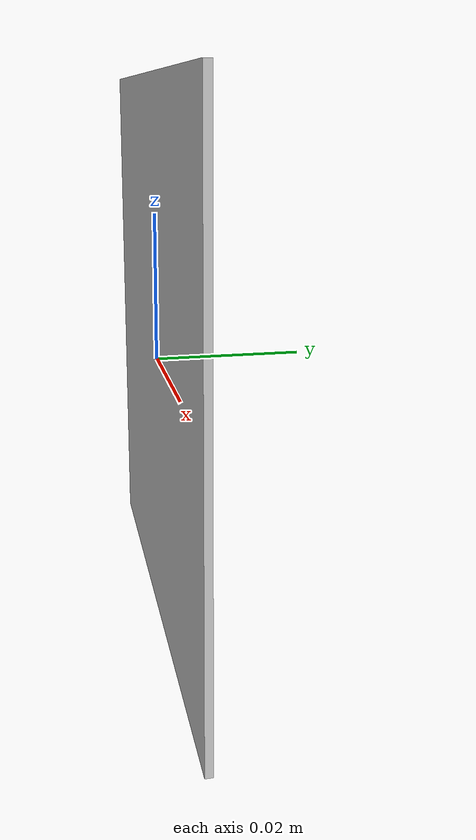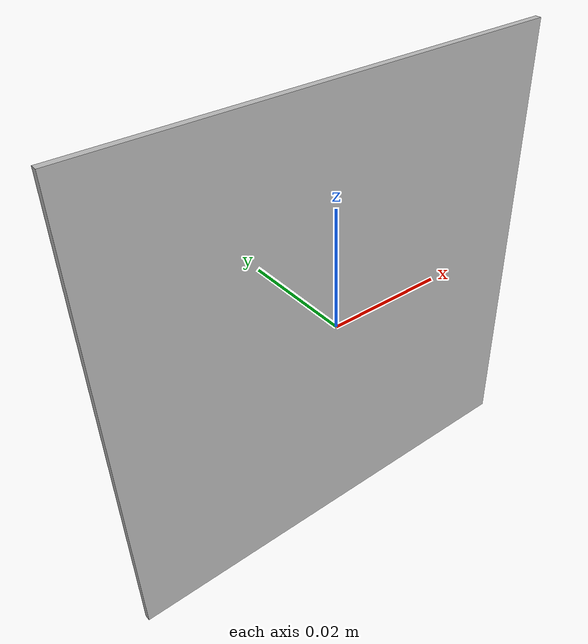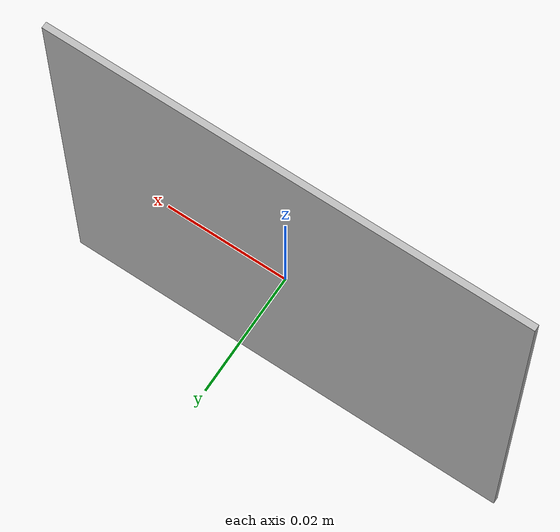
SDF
<?xml version="1.0" ?>
<sdf version="1.6">
  <model name="marker">
    <static>true</static>
    <link name="marker_link">
      <pose>0 0 0 0 0 0</pose>
      <collision name="marker_collision">
        <geometry>
          <box>
            <size>0.0762 0.001 0.0762</size>
          </box>
        </geometry>
      </collision>
      <visual name="marker_visual">
        <geometry>
          <box>
            <size>0.0762 0.001 0.0762</size>
          </box>
        </geometry>
        <material>
          <script>
            <uri>model://marker</uri>
            <name>marker</name>
          </script>
        </material>
      </visual>
    </link>
  </model>
</sdf>
